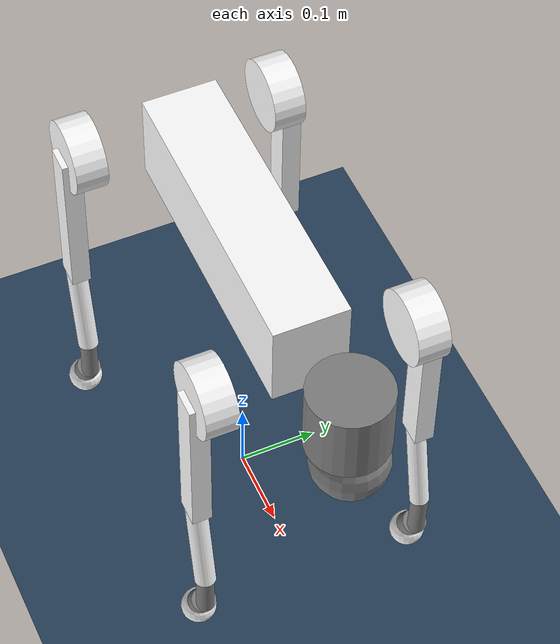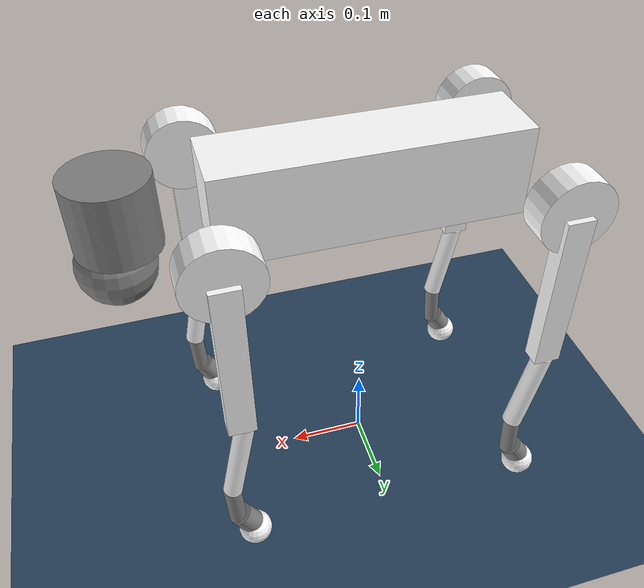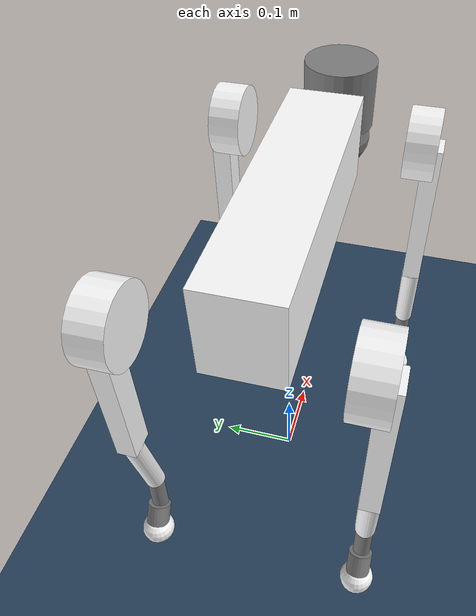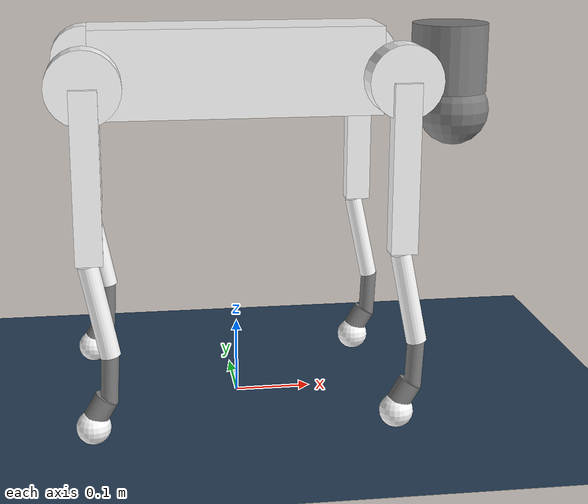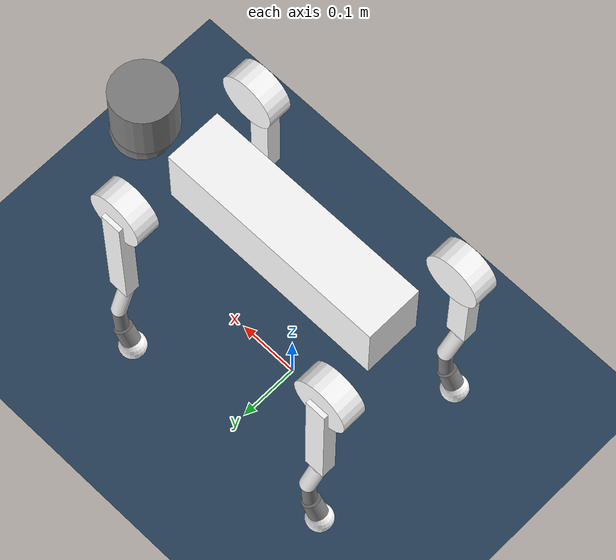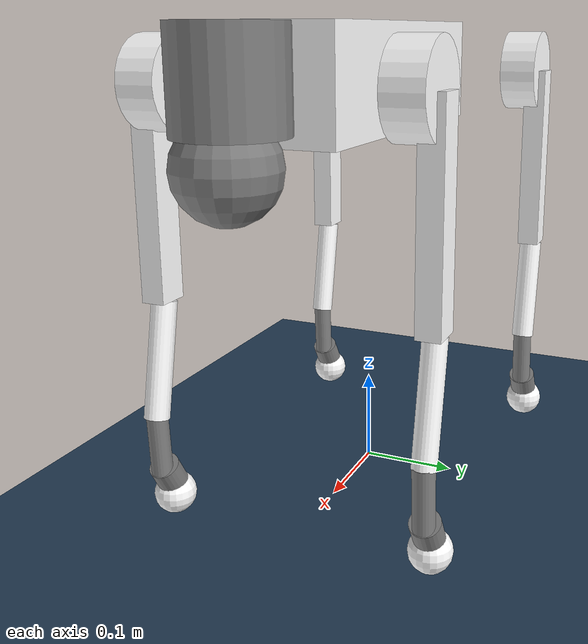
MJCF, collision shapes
<mujoco model="go2_description">
  <compiler angle="radian" meshdir="../mujoco_meshes/" autolimits="true"/>

  <option timestep="0.005" gravity="0 0 -9.81"/>

  <asset>
    <mesh name="base" file="base.stl"/>
    <mesh name="hip" file="hip.stl"/>
    <mesh name="thigh" file="thigh.stl"/>
    <mesh name="calf" file="calf.stl"/>
    <mesh name="foot" file="foot.stl"/>
    <mesh name="thigh_mirror" file="thigh_mirror.stl"/>
    <mesh name="calf_mirror" file="calf_mirror.stl"/>
    <texture name="grid" type="2d" builtin="checker" rgb1=".1 .2 .3" rgb2=".2 .3 .4" width="300" height="300" mark="edge" markrgb=".8 .8 .8"/>
    <material name="grid_mat" texture="grid" texrepeat="2 2" texuniform="true"/>
  </asset>

  <worldbody>
    <body name="base" pos="0 0 0.445">
      <inertial pos="0.021112 0 -0.005366" quat="-0.000543471 0.713435 -0.00173769 0.700719"
        mass="6.921"
        diaginertia="0.107027 0.0980771 0.0244531" />
      <geom type="mesh" contype="0" conaffinity="0" group="0" density="0" rgba="1 1 1 1" mesh="base"/>
      <geom size="0.1881 0.04675 0.057" type="box" rgba="1 1 1 1"/>
      <geom size="0.05 0.045" pos="0.285 0 0.01" type="cylinder"/>
      <geom size="0.047" pos="0.293 0 -0.06"/>
      <freejoint/>
      <site name="imu_site" pos="-0.02557 0 0.04232"/>
      <camera name="front_depth_camera" pos="0.28 0 0" fovy="60" ipd="0.06"/>
      <body name="FL_hip" pos="0.1934 0.0465 0">
        <inertial pos="-0.0054 0.00194 -0.000105" quat="0.497014 0.499245 0.505462 0.498237" mass="0.678" diaginertia="0.00088403 0.000596003 0.000479967"/>
        <joint name="FL_hip_joint" pos="0 0 0" axis="1 0 0" range="-1.0472 1.0472" actuatorfrcrange="-23.7 23.7"/>
        <geom type="mesh" contype="0" conaffinity="0" group="0" density="0" rgba="1 1 1 1" mesh="hip"/>
        <geom size="0.046 0.02" pos="0 0.08 0" quat="0.707107 0.707107 0 0" type="cylinder" rgba="1 1 1 1"/>
        <body name="FL_thigh" pos="0 0.0955 0">
          <inertial pos="-0.00374 -0.0223 -0.0327" quat="0.829533 0.0847635 -0.0200632 0.551623" mass="1.152" diaginertia="0.00594973 0.00584149 0.000878787"/>
          <joint name="FL_thigh_joint" pos="0 0 0" axis="0 1 0" range="-1.5708 3.4907" actuatorfrcrange="-23.7 23.7"/>
          <geom type="mesh" contype="0" conaffinity="0" group="0" density="0" rgba="1 1 1 1" mesh="thigh"/>
          <geom size="0.1065 0.01225 0.017" pos="0 0 -0.1065" quat="0.707107 0 0.707107 0" type="box" rgba="1 1 1 1"/>
          <body name="FL_calf" pos="0 0 -0.213">
            <site name="FL_foot_site" pos="0 0 -0.213" size="0.01"/>
            <inertial pos="0.00629595 -0.000622121 -0.141417" quat="0.710749 0.00140574 -0.00463741 0.703429" mass="0.241352" diaginertia="0.0014901 0.00146367 5.30286e-05"/>
            <joint name="FL_calf_joint" pos="0 0 0" axis="0 1 0" range="-2.7227 -0.83776" actuatorfrcrange="-45.43 45.43"/>
            <geom type="mesh" contype="0" conaffinity="0" group="0" density="0" rgba="1 1 1 1" mesh="calf"/>
            <geom size="0.012 0.06" pos="0.008 0 -0.06" quat="0.994493 0 -0.104807 0" type="cylinder" rgba="1 1 1 1"/>
            <geom size="0.011 0.0325" pos="0.02 0 -0.148" quat="0.999688 0 0.0249974 0" type="cylinder"/>
            <geom size="0.0155 0.015" pos="0.00801333 0 -0.18745" quat="0.965093 0 0.261909 0" type="cylinder"/>
            <geom pos="0 0 -0.213" quat="1 0 0 0" type="mesh" contype="0" conaffinity="0" group="0" density="0" rgba="1 1 1 1" mesh="foot"/>
            <geom size="0.022" pos="-0.002 0 -0.213" rgba="1 1 1 1" friction="0.8" condim="3"/>
          </body>
        </body>
      </body>
      <body name="FR_hip" pos="0.1934 -0.0465 0">
        <inertial pos="-0.0054 -0.00194 -0.000105" quat="0.498237 0.505462 0.499245 0.497014" mass="0.678" diaginertia="0.00088403 0.000596003 0.000479967"/>
        <joint name="FR_hip_joint" pos="0 0 0" axis="1 0 0" range="-1.0472 1.0472" actuatorfrcrange="-23.7 23.7"/>
        <geom quat="4.63268e-05 1 0 0" type="mesh" contype="0" conaffinity="0" group="0" density="0" rgba="1 1 1 1" mesh="hip"/>
        <geom size="0.046 0.02" pos="0 -0.08 0" quat="0.707107 0.707107 0 0" type="cylinder" rgba="1 1 1 1"/>
        <body name="FR_thigh" pos="0 -0.0955 0">
          <inertial pos="-0.00374 0.0223 -0.0327" quat="0.551623 -0.0200632 0.0847635 0.829533" mass="1.152" diaginertia="0.00594973 0.00584149 0.000878787"/>
          <joint name="FR_thigh_joint" pos="0 0 0" axis="0 1 0" range="-1.5708 3.4907" actuatorfrcrange="-23.7 23.7"/>
          <geom type="mesh" contype="0" conaffinity="0" group="0" density="0" rgba="1 1 1 1" mesh="thigh_mirror"/>
          <geom size="0.1065 0.01225 0.017" pos="0 0 -0.1065" quat="0.707107 0 0.707107 0" type="box" rgba="1 1 1 1"/>
          <body name="FR_calf" pos="0 0 -0.213">
            <site name="FR_foot_site" pos="0 0 -0.213" size="0.01"/>
            <inertial pos="0.00629595 0.000622121 -0.141417" quat="0.703429 -0.00463741 0.00140574 0.710749" mass="0.241352" diaginertia="0.0014901 0.00146367 5.30286e-05"/>
            <joint name="FR_calf_joint" pos="0 0 0" axis="0 1 0" range="-2.7227 -0.83776" actuatorfrcrange="-45.43 45.43"/>
            <geom type="mesh" contype="0" conaffinity="0" group="0" density="0" rgba="1 1 1 1" mesh="calf_mirror"/>
            <geom size="0.013 0.06" pos="0.01 0 -0.06" quat="0.995004 0 -0.0998334 0" type="cylinder" rgba="1 1 1 1"/>
            <geom size="0.011 0.0325" pos="0.02 0 -0.148" quat="0.999688 0 0.0249974 0" type="cylinder"/>
            <geom size="0.0155 0.015" pos="0.00801333 0 -0.18745" quat="0.965093 0 0.261909 0" type="cylinder"/>
            <geom pos="0 0 -0.213" quat="1 0 0 0" type="mesh" contype="0" conaffinity="0" group="0" density="0" rgba="1 1 1 1" mesh="foot"/>
            <geom size="0.022" pos="-0.002 0 -0.213" rgba="1 1 1 1" friction="0.8" condim="3"/>
          </body>
        </body>
      </body>
      <body name="RL_hip" pos="-0.1934 0.0465 0">
        <inertial pos="0.0054 0.00194 -0.000105" quat="0.505462 0.498237 0.497014 0.499245" mass="0.678" diaginertia="0.00088403 0.000596003 0.000479967"/>
        <joint name="RL_hip_joint" pos="0 0 0" axis="1 0 0" range="-1.0472 1.0472" actuatorfrcrange="-23.7 23.7"/>
        <geom quat="4.63268e-05 0 1 0" type="mesh" contype="0" conaffinity="0" group="0" density="0" rgba="1 1 1 1" mesh="hip"/>
        <geom size="0.046 0.02" pos="0 0.08 0" quat="0.707107 0.707107 0 0" type="cylinder" rgba="1 1 1 1"/>
        <body name="RL_thigh" pos="0 0.0955 0">
          <inertial pos="-0.00374 -0.0223 -0.0327" quat="0.829533 0.0847635 -0.0200632 0.551623" mass="1.152" diaginertia="0.00594973 0.00584149 0.000878787"/>
          <joint name="RL_thigh_joint" pos="0 0 0" axis="0 1 0" range="-0.5236 4.5379" actuatorfrcrange="-23.7 23.7"/>
          <geom type="mesh" contype="0" conaffinity="0" group="0" density="0" rgba="1 1 1 1" mesh="thigh"/>
          <geom size="0.1065 0.01225 0.017" pos="0 0 -0.1065" quat="0.707107 0 0.707107 0" type="box" rgba="1 1 1 1"/>
          <body name="RL_calf" pos="0 0 -0.213">
            <site name="RL_foot_site" pos="0 0 -0.213" size="0.01"/>
            <inertial pos="0.00629595 -0.000622121 -0.141417" quat="0.710749 0.00140574 -0.00463741 0.703429" mass="0.241352" diaginertia="0.0014901 0.00146367 5.30286e-05"/>
            <joint name="RL_calf_joint" pos="0 0 0" axis="0 1 0" range="-2.7227 -0.83776" actuatorfrcrange="-45.43 45.43"/>
            <geom type="mesh" contype="0" conaffinity="0" group="0" density="0" rgba="1 1 1 1" mesh="calf"/>
            <geom size="0.013 0.06" pos="0.01 0 -0.06" quat="0.995004 0 -0.0998334 0" type="cylinder" rgba="1 1 1 1"/>
            <geom size="0.011 0.0325" pos="0.02 0 -0.148" quat="0.999688 0 0.0249974 0" type="cylinder"/>
            <geom size="0.0155 0.015" pos="0.00801333 0 -0.18745" quat="0.965093 0 0.261909 0" type="cylinder"/>
            <geom pos="0 0 -0.213" quat="1 0 0 0" type="mesh" contype="0" conaffinity="0" group="0" density="0" rgba="1 1 1 1" mesh="foot"/>
            <geom size="0.022" pos="-0.002 0 -0.213" rgba="1 1 1 1" friction="0.8" condim="3"/>
          </body>
        </body>
      </body>
      <body name="RR_hip" pos="-0.1934 -0.0465 0">
        <inertial pos="0.0054 -0.00194 -0.000105" quat="0.499245 0.497014 0.498237 0.505462" mass="0.678" diaginertia="0.00088403 0.000596003 0.000479967"/>
        <joint name="RR_hip_joint" pos="0 0 0" axis="1 0 0" range="-1.0472 1.0472" actuatorfrcrange="-23.7 23.7"/>
        <geom quat="2.14617e-09 4.63268e-05 4.63268e-05 -1" type="mesh" contype="0" conaffinity="0" group="0" density="0" rgba="1 1 1 1" mesh="hip"/>
        <geom size="0.046 0.02" pos="0 -0.08 0" quat="0.707107 0.707107 0 0" type="cylinder" rgba="1 1 1 1"/>
        <body name="RR_thigh" pos="0 -0.0955 0">
          <inertial pos="-0.00374 0.0223 -0.0327" quat="0.551623 -0.0200632 0.0847635 0.829533" mass="1.152" diaginertia="0.00594973 0.00584149 0.000878787"/>
          <joint name="RR_thigh_joint" pos="0 0 0" axis="0 1 0" range="-0.5236 4.5379" actuatorfrcrange="-23.7 23.7"/>
          <geom type="mesh" contype="0" conaffinity="0" group="0" density="0" rgba="1 1 1 1" mesh="thigh_mirror"/>
          <geom size="0.1065 0.01225 0.017" pos="0 0 -0.1065" quat="0.707107 0 0.707107 0" type="box" rgba="1 1 1 1"/>
          <body name="RR_calf" pos="0 0 -0.213">
            <site name="RR_foot_site" pos="0 0 -0.213" size="0.01"/>
            <inertial pos="0.00629595 0.000622121 -0.141417" quat="0.703429 -0.00463741 0.00140574 0.710749" mass="0.241352" diaginertia="0.0014901 0.00146367 5.30286e-05"/>
            <joint name="RR_calf_joint" pos="0 0 0" axis="0 1 0" range="-2.7227 -0.83776" actuatorfrcrange="-45.43 45.43"/>
            <geom type="mesh" contype="0" conaffinity="0" group="0" density="0" rgba="1 1 1 1" mesh="calf_mirror"/>
            <geom size="0.013 0.06" pos="0.01 0 -0.06" quat="0.995004 0 -0.0998334 0" type="cylinder" rgba="1 1 1 1"/>
            <geom size="0.011 0.0325" pos="0.02 0 -0.148" quat="0.999688 0 0.0249974 0" type="cylinder"/>
            <geom size="0.0155 0.015" pos="0.00801333 0 -0.18745" quat="0.965093 0 0.261909 0" type="cylinder"/>
            <geom pos="0 0 -0.213" quat="1 0 0 0" type="mesh" contype="0" conaffinity="0" group="0" density="0" rgba="1 1 1 1" mesh="foot"/>
            <geom size="0.022" pos="-0.002 0 -0.213" rgba="1 1 1 1" friction="0.8" condim="3"/>
          </body>
        </body>
      </body>
    </body>
    <geom name="floor" type="plane" size="0 0 .05" material="grid_mat" friction="1.0 0.005 0.0001"/>
  </worldbody>

  <sensor>
    <gyro name="gyro" site="imu_site"/>

    <accelerometer name="accelerometer" site="imu_site"/>

    <touch name="FL_touch" site="FL_foot_site"/>
    <touch name="FR_touch" site="FR_foot_site"/>
    <touch name="RL_touch" site="RL_foot_site"/>
    <touch name="RR_touch" site="RR_foot_site"/>
  </sensor>

<actuator>
  <motor name="FL_hip_joint"   joint="FL_hip_joint"   forcerange="-23.7 23.7" ctrlrange="-23.7 23.7" ctrllimited="true"/>
  <motor name="FL_thigh_joint" joint="FL_thigh_joint" forcerange="-23.7 23.7" ctrlrange="-23.7 23.7" ctrllimited="true"/>
  <motor name="FL_calf_joint"  joint="FL_calf_joint"  forcerange="-45.4 45.4" ctrlrange="-23.7 23.7" ctrllimited="true"/>

  <motor name="FR_hip_joint"   joint="FR_hip_joint"   forcerange="-23.7 23.7" ctrlrange="-23.7 23.7" ctrllimited="true"/>
  <motor name="FR_thigh_joint" joint="FR_thigh_joint" forcerange="-23.7 23.7" ctrlrange="-23.7 23.7" ctrllimited="true"/>
  <motor name="FR_calf_joint"  joint="FR_calf_joint"  forcerange="-45.4 45.4" ctrlrange="-23.7 23.7" ctrllimited="true"/>

  <motor name="RL_hip_joint"   joint="RL_hip_joint"   forcerange="-23.7 23.7" ctrlrange="-23.7 23.7" ctrllimited="true"/>
  <motor name="RL_thigh_joint" joint="RL_thigh_joint" forcerange="-23.7 23.7" ctrlrange="-23.7 23.7" ctrllimited="true"/>
  <motor name="RL_calf_joint"  joint="RL_calf_joint"  forcerange="-45.4 45.4" ctrlrange="-23.7 23.7" ctrllimited="true"/>

  <motor name="RR_hip_joint"   joint="RR_hip_joint"   forcerange="-23.7 23.7" ctrlrange="-23.7 23.7" ctrllimited="true"/>
  <motor name="RR_thigh_joint" joint="RR_thigh_joint" forcerange="-23.7 23.7" ctrlrange="-23.7 23.7" ctrllimited="true"/>
  <motor name="RR_calf_joint"  joint="RR_calf_joint"  forcerange="-45.4 45.4" ctrlrange="-23.7 23.7" ctrllimited="true"/>
</actuator>
</mujoco>
